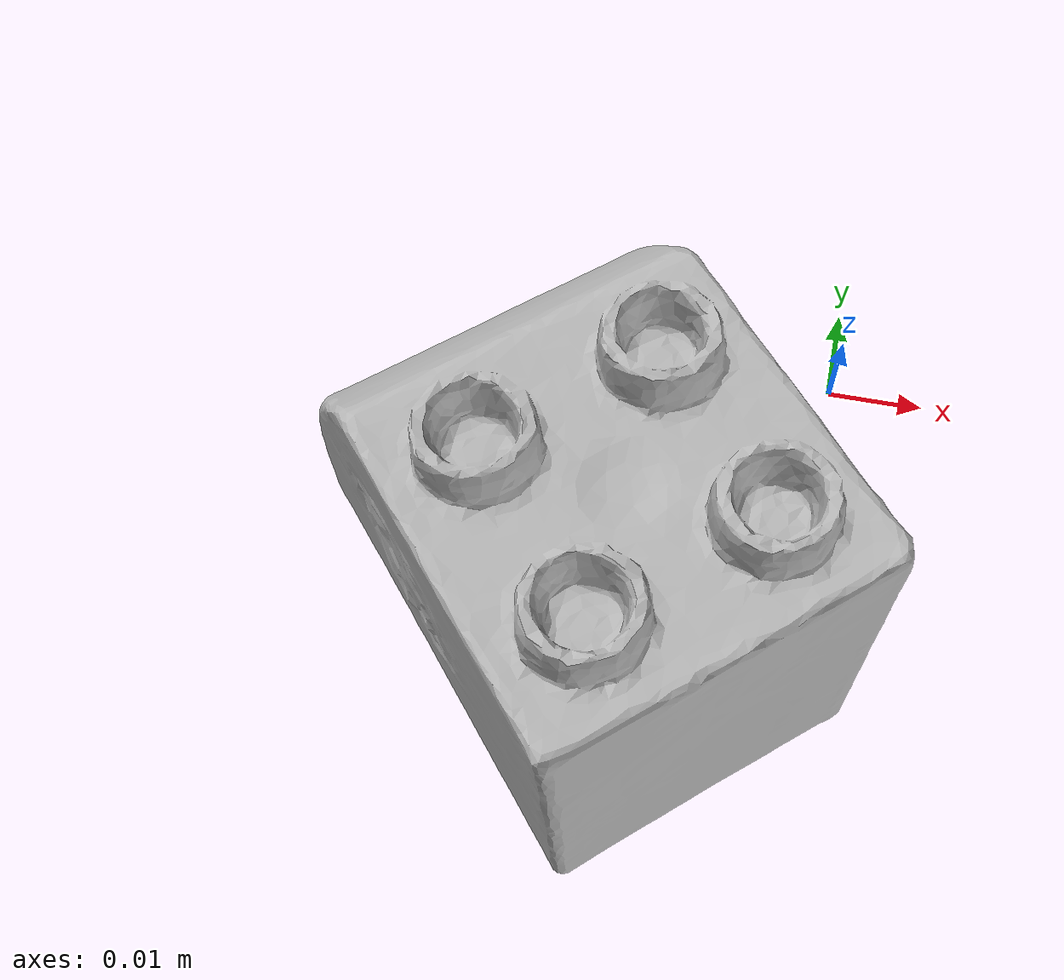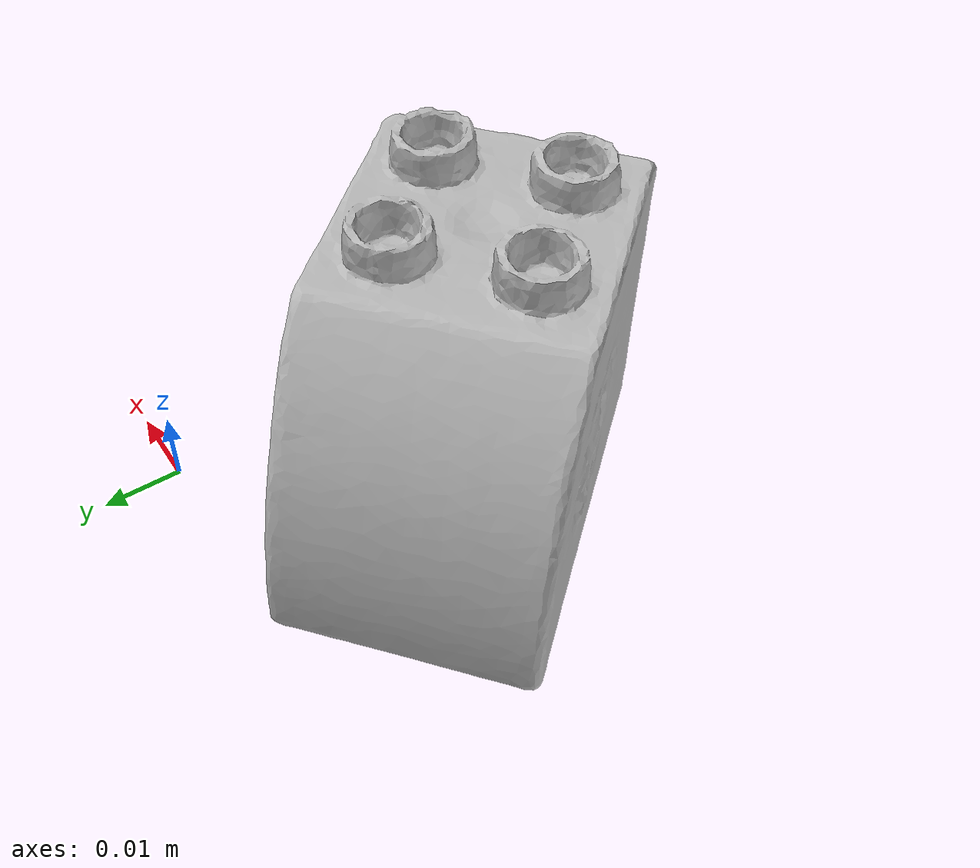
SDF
<?xml version='1.0'?>
<sdf version="1.4">
  <model name="d_lego_duplo">
    <static>false</static>
    <link name="link">
      <inertial>
        <pose>-0.02022260894778108 -0.029911376763957505 0.022775232245389507 -0.2433591376533694 1.3050776420007137 -1.113773490069745</pose>
        <mass>3.797934400201833e-05</mass>
        <inertia>
          <ixx>9.86765296317061e-09</ixx>
          <ixy>-4.776148251755483e-25</ixy>
          <ixz>9.099737316258397e-25</ixz>
          <iyy>9.6121651138702e-09</iyy>
          <iyz>-1.5498190191524435e-24</iyz>
          <izz>6.6584957743664926e-09</izz>
        </inertia>
      </inertial>
      <collision name="collision">
        <geometry>
          <mesh>
            <!-- Use a downsampled mesh for collisions -->
            <uri>model://073-d_lego_duplo/google_16k/073-d_lego_duplo.obj</uri>
            </mesh>
        </geometry>
        <surface>
          <friction>
            <ode>
              <mu>0.9</mu>
              <mu2>0.9</mu2>
            </ode>
          </friction>
          <contact>
            <ode>
              <kp>1000000000000.0</kp>
              <kd>1</kd>
              <min_depth>0.0001</min_depth>
              <max_vel>0.01</max_vel>
            </ode>
          </contact>
          <bounce>
            <restitution_coefficient>0.1</restitution_coefficient>
            <threshold>1000.0</threshold>
          </bounce>
        </surface>
      </collision>
      <visual name="visual">
        <geometry>
          <mesh>
            <uri>model://073-d_lego_duplo/google_16k/073-d_lego_duplo.dae</uri>
            </mesh>
        </geometry>
      </visual>
    </link>
  </model>
</sdf>
